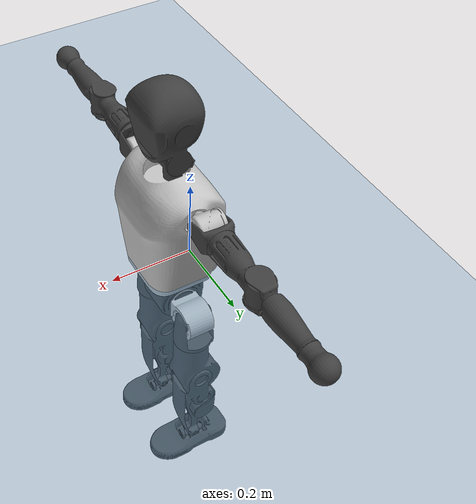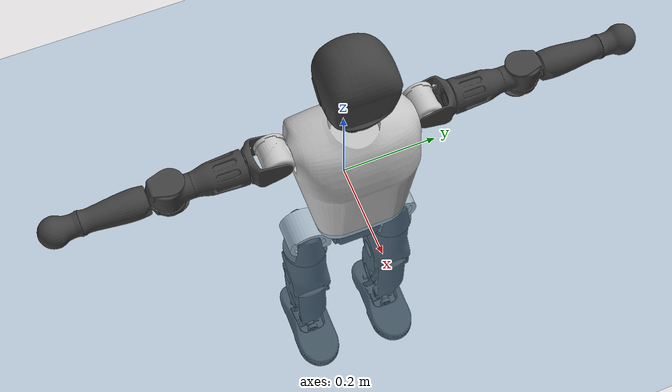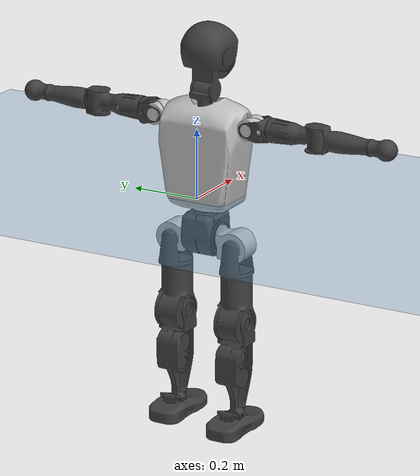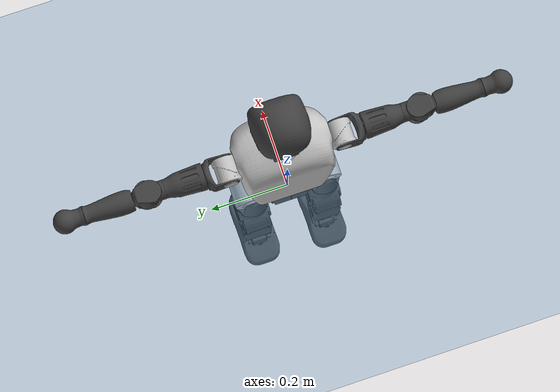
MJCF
<mujoco model="T1">
  <compiler angle="radian" assetdir="assets" balanceinertia="true" inertiafromgeom="false"/>

  <option timestep="0.005" density="1.2" viscosity="2e-05"/>

  <size nkey="1"/>

  <visual>
    <quality shadowsize="8192"/>
    <map shadowclip="0.5"/>
  </visual>

  <default>
    <default class="/">
      <joint armature="0.01" damping="0.01" frictionloss="0.1"/>
      <geom contype="0" conaffinity="0" group="1" solref="-1000 -80"/>
      <site size="0.01 0.005 0.005" group="5"/>
      <general forcelimited="true" biastype="affine" gainprm="25" biasprm="0 -25 -0.6"/>
      <default class="t1">
        <geom rgba="0.25 0.25 0.25 1"/>
        <default class="visual">
          <geom type="mesh" group="2"/>
        </default>
        <default class="collision">
          <geom group="3"/>
        </default>
        <default class="foot">
          <geom size="0.1115 0.05 0.015" type="box" condim="6" group="4" priority="1" solimp="0.015 1 0.015"/>
        </default>
        <default class="reward_collision_sphere">
          <geom group="5" rgba="1 0 0 1"/>
        </default>
      </default>
    </default>
  </default>

  <asset>
    <texture type="skybox" colorspace="auto" name="//unnamed_texture_0" builtin="gradient" rgb1="0.95 0.95 0.95" rgb2="0.95 0.95 0.95" width="100" height="600"/>
    <texture type="2d" colorspace="auto" name="texplane" builtin="checker" rgb1="0.345 0.575 0.748" rgb2="0.345 0.575 0.748" markrgb="1 1 1" width="512" height="512"/>
    <material name="MatPlane" class="/" texture="texplane" texuniform="true" texrepeat="2 2" specular="0.9"/>
    <mesh name="Trunk" class="/" file="Trunk.stl"/>
    <mesh name="H1" class="/" file="H1.stl"/>
    <mesh name="H2" class="/" file="H2.stl"/>
    <mesh name="AL1" class="/" file="AL1.stl"/>
    <mesh name="AL2" class="/" file="AL2.stl"/>
    <mesh name="AL3" class="/" file="AL3.stl"/>
    <mesh name="left_hand_link" class="/" file="left_hand_link.stl"/>
    <mesh name="AR1" class="/" file="AR1.stl"/>
    <mesh name="AR2" class="/" file="AR2.stl"/>
    <mesh name="AR3" class="/" file="AR3.stl"/>
    <mesh name="right_hand_link" class="/" file="right_hand_link.stl"/>
    <mesh name="Waist" class="/" file="Waist.stl"/>
    <mesh name="Hip_Pitch_Left" class="/" file="Hip_Pitch_Left.stl"/>
    <mesh name="Hip_Roll_Left" class="/" file="Hip_Roll_Left.stl"/>
    <mesh name="Hip_Yaw_Left" class="/" file="Hip_Yaw_Left.stl"/>
    <mesh name="Shank_Left" class="/" file="Shank_Left.stl"/>
    <mesh name="Ankle_Cross_Left" class="/" file="Ankle_Cross_Left.stl"/>
    <mesh name="left_foot_link" class="/" file="left_foot_link.stl"/>
    <mesh name="Hip_Pitch_Right" class="/" file="Hip_Pitch_Right.stl"/>
    <mesh name="Hip_Roll_Right" class="/" file="Hip_Roll_Right.stl"/>
    <mesh name="Hip_Yaw_Right" class="/" file="Hip_Yaw_Right.stl"/>
    <mesh name="Shank_Right" class="/" file="Shank_Right.stl"/>
    <mesh name="Ankle_Cross_Right" class="/" file="Ankle_Cross_Right.stl"/>
    <mesh name="right_foot_link" class="/" file="right_foot_link.stl"/>
  </asset>

  <worldbody>
    <geom name="floor" class="/" size="100 100 0.125" type="plane" group="0" material="MatPlane"/>
    <light name="toplight_shadow" class="/" pos="0 0 5" dir="0.0990148 0.0990148 -0.990148" type="directional" ambient="0.04 0.04 0.04" diffuse="0.55 0.55 0.55" specular="0.12 0.12 0.12"/>
    <light name="toplight_fill" class="/" pos="0 0 5" dir="0.0990148 0.0990148 -0.990148" type="directional" castshadow="false" ambient="0.04 0.04 0.04" diffuse="0.3 0.3 0.3" specular="0.08 0.08 0.08"/>
    <body name="trunk" childclass="t1" pos="-0.000480414 -0.00275903 0.0025356" quat="0.999999 0.00101797 0.0002858 -0.000886476">
      <inertial pos="0.0359007 -0.0013296 0.10478" quat="0.999961 -4.82121e-05 -0.0088644 2.876e-05" mass="7.62159" diaginertia="0.01313 0.0549719 0.0568254"/>
      <joint name="//unnamed_joint_0" type="free" armature="0" damping="0" frictionloss="0"/>
      <geom name="//unnamed_geom_1" class="visual" rgba="0.76 0.76 0.76 1" mesh="Trunk"/>
      <geom name="//unnamed_geom_2" class="collision" size="0.0650204 0.0866939 0.130041" pos="0.0404081 0 0.11899" type="box"/>
      <geom name="//unnamed_geom_3" class="reward_collision_sphere" size="0.099698" pos="0.0404081 0 0.0991585"/>
      <geom name="//unnamed_geom_4" class="reward_collision_sphere" size="0.0130041" pos="0.0404081 0.07954 0"/>
      <geom name="//unnamed_geom_5" class="reward_collision_sphere" size="0.0130041" pos="0.0404081 -0.07954 0"/>
      <geom name="//unnamed_geom_6" class="reward_collision_sphere" size="0.0130041" pos="0.0404081 0.100127 0.178485"/>
      <geom name="//unnamed_geom_7" class="reward_collision_sphere" size="0.0130041" pos="0.0404081 -0.100127 0.178485"/>
      <site name="imu" pos="0.0126809 0.00253407 -0.0031774" size="0.00866939"/>
      <camera name="track" pos="0 -1.87153 0" quat="0.707107 0.707107 0 0" mode="trackcom"/>
      <camera name="ego_camera" pos="0.0821632 0 0.416466" quat="-0.5 -0.5 0.5 0.5"/>
      <body name="H1" pos="0.04415 0.00251795 0.238209" quat="1 -2.94549e-05 1.62585e-05 -1.06567e-05">
        <inertial pos="-0.00380095 -0.000985351 0.0594821" quat="0.756823 -0.0174184 0.00209006 0.653385" mass="0.287168" diaginertia="3.23895e-05 0.000161572 0.000140529"/>
        <joint name="AAHead_yaw" pos="0 0 0" axis="0.0031149 0.00344248 0.999989" stiffness="0.00160787" range="-1.58616 1.51748" armature="0.0074494" damping="0.0157886" frictionloss="0.0967139"/>
        <geom name="//unnamed_geom_8" class="visual" mesh="H1"/>
        <body name="H2" pos="0.000276414 -0.000203106 0.0633054" quat="1 -3.59283e-05 -1.03424e-05 -1.74553e-05">
          <inertial pos="0.00393673 0.000329931 0.0980945" quat="0.988694 0.10407 -0.0726339 -0.0798556" mass="0.40064" diaginertia="0.000268076 0.00134294 0.0016494"/>
          <joint name="Head_pitch" pos="0 0 0" axis="0.000502472 -0.999988 0.0049339" range="-1.21365 0.337666" armature="0.00743081" damping="0.00592738" frictionloss="0.0893348"/>
          <geom name="//unnamed_geom_9" class="visual" mesh="H2"/>
          <geom name="//unnamed_geom_10" class="collision" size="0.0693551" pos="0.00673469 0 0.109074"/>
          <geom name="//unnamed_geom_11" class="reward_collision_sphere" size="0.0780245" pos="0.0134694 0 0.0991585"/>
        </body>
      </body>
      <body name="AL1" pos="0.0394024 0.0993904 0.217543" quat="1 9.69666e-06 0.000472481 6.09026e-05">
        <inertial pos="-0.0023747 0.0421091 -0.000723564" quat="0.498602 0.505161 -0.498734 0.497466" mass="0.347884" diaginertia="0.000189603 0.000938312 0.00028857"/>
        <joint name="Left_Shoulder_Pitch" pos="0 0 0" axis="0.000161883 0.999943 -0.010692" stiffness="0.000448838" range="-3.30744 1.23469" armature="0.0084411" damping="0.00856972" frictionloss="0.0913571"/>
        <geom name="//unnamed_geom_12" class="visual" rgba="0.76 0.76 0.76 1" mesh="AL1"/>
        <body name="AL2" pos="0.00122799 0.0453683 -0.00109526" quat="1 6.52248e-05 -0.000137201 -6.07189e-05">
          <inertial pos="0.00269587 0.0335407 -0.000316585" quat="0.487011 0.510497 -0.489986 0.511983" mass="0.105304" diaginertia="5.56553e-05 0.00024622 0.000172458"/>
          <joint name="Left_Shoulder_Roll" pos="0 0 0" axis="-0.999989 0.00226497 -0.00420542" range="-1.59101 1.77893" armature="0.00876006" damping="0.00569491" frictionloss="0.0903367"/>
          <geom name="//unnamed_geom_13" class="visual" mesh="AL2"/>
          <body name="AL3" pos="0.00345544 0.0573274 0.00204709" quat="0.999999 -0.0002685 0.000739551 -0.00114045">
            <inertial pos="-0.0028714 0.0796441 0.000212644" quat="0.703539 0.710648 -0.00354851 2.77754e-05" mass="0.684298" diaginertia="0.00181085 0.00886101 0.000592248"/>
            <joint name="Left_Elbow_Pitch" pos="0 0 0" axis="0.00122148 -0.999999 0.000104502" stiffness="0.00301224" range="-2.28148 2.26523" armature="0.0078669" damping="0.00995526" frictionloss="0.0912904"/>
            <geom name="//unnamed_geom_14" class="visual" mesh="AL3"/>
            <geom name="//unnamed_geom_15" class="collision" size="0.0260082 0.0650204" pos="0 0.0467882 0" quat="0.707105 0.707108 0 0" type="cylinder"/>
            <geom name="//unnamed_geom_16" class="reward_collision_sphere" size="0.0312098"/>
            <body name="left_hand_link" pos="-0.000832291 0.137692 -0.00163136" quat="0.999999 -0.000660598 6.82243e-05 -0.00117263">
              <inertial pos="-0.000705432 0.100486 0.00277005" quat="0.710277 0.703887 -0.00220885 0.00669749" mass="0.207445" diaginertia="0.00112836 0.00564409 0.000192136"/>
              <joint name="Left_Elbow_Yaw" pos="0 0 0" axis="-0.000774758 0.000861295 0.999999" stiffness="0.0106313" range="-2.42237 -0.00561149" armature="0.00899446" damping="0.00970997" frictionloss="0.0847399"/>
              <geom name="//unnamed_geom_17" class="visual" mesh="left_hand_link"/>
              <geom name="//unnamed_geom_18" class="collision" size="0.0260082 0.0758572" pos="0 0.121649 0" quat="0.707105 0.707108 0 0" type="cylinder"/>
              <geom name="//unnamed_geom_19" class="reward_collision_sphere" size="0.043347"/>
              <geom name="//unnamed_geom_20" class="reward_collision_sphere" size="0.0303429" pos="0 0.102934 0"/>
              <geom name="//unnamed_geom_21" class="reward_collision_sphere" size="0.0303429" pos="0 0.201189 0"/>
            </body>
          </body>
        </body>
      </body>
      <body name="AR1" pos="0.0398627 -0.101128 0.216106" quat="1 0.000447879 0.000239824 0.00019069">
        <inertial pos="-0.000340527 -0.0449964 0.00249516" quat="0.499769 0.496541 -0.505683 0.497959" mass="0.338782" diaginertia="0.000184656 0.000878293 0.000275027"/>
        <joint name="Right_Shoulder_Pitch" pos="0 0 0" axis="-0.0113511 -0.999927 -0.00402236" stiffness="0.00790855" range="-1.17293 3.31312" armature="0.00871192" damping="0.00673049" frictionloss="0.0980897"/>
        <geom name="//unnamed_geom_22" class="visual" rgba="0.76 0.76 0.76 1" mesh="AR1"/>
        <body name="AR2" pos="-0.000340059 -0.0445874 -0.000440792" quat="1 -0.000312435 0.000548612 0.000423774">
          <inertial pos="0.000602061 -0.034961 -0.00131948" quat="0.51353 0.481738 -0.51439 0.489509" mass="0.10581" diaginertia="5.72039e-05 0.00025445 0.00016912"/>
          <joint name="Right_Shoulder_Roll" pos="0 0 0" axis="-0.999874 -0.00506973 -0.0150468" range="-1.72851 1.56667" armature="0.00754888" damping="0.00659902" frictionloss="0.0911147"/>
          <geom name="//unnamed_geom_23" class="visual" mesh="AR2"/>
          <body name="AR3" pos="0.000371962 -0.0595039 0.00231385" quat="0.999999 9.24185e-05 0.00112976 0.000662703">
            <inertial pos="0.00209779 -0.0802047 0.00281215" quat="0.707929 0.706283 -0.000750901 0.000640939" mass="0.644729" diaginertia="0.0016719 0.00893314 0.000575706"/>
            <joint name="Right_Elbow_Pitch" pos="0 0 0" axis="0.000142863 1 -0.000236842" range="-2.25155 2.25639" armature="0.00847711" damping="0.00748152" frictionloss="0.0967409"/>
            <geom name="//unnamed_geom_24" class="visual" mesh="AR3"/>
            <geom name="//unnamed_geom_25" class="collision" size="0.0260082 0.0650204" pos="0 -0.0467882 0" quat="0.707105 0.707108 0 0" type="cylinder"/>
            <geom name="//unnamed_geom_26" class="reward_collision_sphere" size="0.0312098"/>
            <body name="right_hand_link" pos="-0.00271378 -0.138985 -0.00193963" quat="1 -6.7284e-05 -3.64373e-05 0.00014063">
              <inertial pos="-0.000398413 -0.102723 0.00179803" quat="0.706756 0.707452 0.00276387 -0.000166107" mass="0.212757" diaginertia="0.0011692 0.00602626 0.000210096"/>
              <joint name="Right_Elbow_Yaw" pos="0 0 0" axis="-0.00299448 0.010269 0.999943" range="0.0069853 2.43355" armature="0.00824956" damping="0.00456572" frictionloss="0.0940905"/>
              <geom name="//unnamed_geom_27" class="visual" mesh="right_hand_link"/>
              <geom name="//unnamed_geom_28" class="collision" size="0.0260082 0.0758572" pos="0 -0.121649 0" quat="0.707105 0.707108 0 0" type="cylinder"/>
              <geom name="//unnamed_geom_29" class="reward_collision_sphere" size="0.043347"/>
              <geom name="//unnamed_geom_30" class="reward_collision_sphere" size="0.0303429" pos="0 -0.102934 0"/>
              <geom name="//unnamed_geom_31" class="reward_collision_sphere" size="0.0303429" pos="0 -0.201189 0"/>
            </body>
          </body>
        </body>
      </body>
      <body name="Waist" pos="0.0405117 -0.00202632 -0.114282" quat="0.999999 -0.00120147 -0.000506496 0.00106561">
        <inertial pos="-0.00145258 0.00190036 0.00504519" quat="0.982326 0.00386039 -0.186662 0.0133321" mass="1.63274" diaginertia="0.000751556 0.00383763 0.00461637"/>
        <joint name="Waist" pos="0 0 0" axis="0.00968632 -0.00226821 0.999951" stiffness="0.00309544" range="-1.56884 1.55231" armature="0.00855972" damping="0.0170386" frictionloss="0.0877775"/>
        <geom name="//unnamed_geom_32" class="visual" mesh="Waist"/>
        <body name="Hip_Pitch_Left" pos="0.000588806 0.0961352 0.00156701" quat="1 -2.99098e-05 -5.27521e-05 -6.88236e-05">
          <inertial pos="0.00332757 -0.00721241 -0.0183391" quat="0.97645 0.214113 0.0263603 0.00267054" mass="0.676034" diaginertia="0.000247096 0.00110648 0.00123588"/>
          <joint name="Left_Hip_Pitch" pos="0 0 0" axis="0.00919401 0.999956 -0.00204461" stiffness="0.0137628" range="-1.78817 1.59293" armature="0.00940848" damping="0.0104794" frictionloss="0.087125"/>
          <geom name="//unnamed_geom_33" class="visual" rgba="0.76 0.76 0.76 1" mesh="Hip_Pitch_Left"/>
          <body name="Hip_Roll_Left" pos="-0.00157112 -0.00166203 -0.0216498" quat="1 0.000188111 0.00032604 0.00019764">
            <inertial pos="0.000513941 -0.00245139 -0.0543391" quat="0.707082 -0.00636461 -0.00620908 0.707076" mass="0.243284" diaginertia="0.000226052 0.0010216 0.000492792"/>
            <joint name="Left_Hip_Roll" pos="0 0 0" axis="-0.99999 0.00294984 -0.00331739" range="-1.54742 0.23147" armature="0.00824661" damping="0.00171922" frictionloss="0.0979997"/>
            <geom name="//unnamed_geom_34" class="visual" mesh="Hip_Roll_Left"/>
            <geom name="//unnamed_geom_35" class="reward_collision_sphere" size="0.0476817"/>
            <body name="Hip_Yaw_Left" pos="0.00187401 -0.00222252 -0.0795855" quat="1 -0.000778563 0.000543054 0.000133911">
              <inertial pos="-0.00546775 -0.000982423 -0.0911144" quat="0.696829 -0.0341792 -0.0318895 0.715712" mass="1.38986" diaginertia="0.0034498 0.0175651 0.00239815"/>
              <joint name="Left_Hip_Yaw" pos="0 0 0" axis="0.00271552 -0.00466148 -0.999985" range="-1.05389 1.02654" armature="0.00867007" damping="0.00764817" frictionloss="0.0867785"/>
              <geom name="//unnamed_geom_36" class="visual" mesh="Hip_Yaw_Left"/>
              <geom name="//unnamed_geom_37" class="collision" size="0.043347 0.0693551" type="cylinder"/>
              <body name="Shank_Left" pos="-0.008295 -0.000138823 -0.133278" quat="1 -0.000137648 5.91544e-05 -9.64476e-06">
                <inertial pos="-0.0066138 0.00115314 -0.123567" quat="0.997424 0.00103497 -0.0161184 0.0698891" mass="1.1061" diaginertia="0.00488528 0.0237107 0.00170154"/>
                <joint name="Left_Knee_Pitch" pos="0 0 0" axis="0.000147879 1 0.000333982" range="-0.00276117 2.29771" armature="0.00982027" damping="0" frictionloss="0.0866529"/>
                <geom name="//unnamed_geom_38" class="visual" mesh="Shank_Left"/>
                <geom name="//unnamed_geom_39" class="collision" size="0.043347 0.0650204" pos="0 0 -0.11899" type="cylinder"/>
                <geom name="//unnamed_geom_40" class="reward_collision_sphere" size="0.0563511"/>
                <body name="Ankle_Cross_Left" pos="0.00294968 -0.000116763 -0.27721" quat="1 -0.000155904 -0.000713958 -0.00010759">
                  <inertial pos="-0.00477033 -0.00123654 -0.00635587" quat="0.442929 0.550518 0.552433 0.442224" mass="0.0471125" diaginertia="3.93638e-06 1.84639e-05 1.09689e-05"/>
                  <joint name="Left_Ankle_Pitch" pos="0 0 0" axis="0.000985804 0.999999 -0.00100011" range="-0.869057 0.349361" armature="0.00967935" damping="0.0228563" frictionloss="0.0870215"/>
                  <geom name="//unnamed_geom_41" class="visual" mesh="Ankle_Cross_Left"/>
                  <body name="left_foot_link" pos="-0.000953376 -0.00288053 -0.0099421" quat="0.999999 0.000386285 0.000492994 -0.000950365">
                    <inertial pos="-0.00276724 -0.00145191 -0.00792111" quat="0.00569493 0.624507 -0.0114648 0.780914" mass="0.462982" diaginertia="0.000379032 0.00170467 0.00215427"/>
                    <joint name="Left_Ankle_Roll" pos="0 0 0" axis="-0.999922 -0.00991997 0.00754375" range="-0.44582 0.484384" armature="0.00861067" damping="0" frictionloss="0.0903346"/>
                    <geom name="//unnamed_geom_42" class="visual" mesh="left_foot_link"/>
                    <geom name="left_foot" class="foot" size="0.10816 0.0384809 0.0140684" pos="0.00673469 0 -0.0148738"/>
                    <geom name="//unnamed_geom_44" class="reward_collision_sphere" size="0.0450808" pos="0.00673469 0 -0.0148738"/>
                    <geom name="//unnamed_geom_45" class="reward_collision_sphere" size="0.0260082" pos="0.0639795 -0.0215226 -0.0148738"/>
                    <geom name="//unnamed_geom_46" class="reward_collision_sphere" size="0.0260082" pos="-0.0471428 -0.0215226 -0.0148738"/>
                    <site name="left_foot" class="foot" pos="0.00673469 0 -0.0148738" size="0.00866939"/>
                  </body>
                </body>
              </body>
            </body>
          </body>
        </body>
        <body name="Hip_Pitch_Right" pos="-0.000623134 -0.100804 -0.000295073" quat="1 -0.000141474 -0.000411835 0.000281621">
          <inertial pos="-0.002424 0.00429787 -0.0177255" quat="0.973647 -0.227401 0.016312 -0.00591505" mass="0.663644" diaginertia="0.000257461 0.00107899 0.00119344"/>
          <joint name="Right_Hip_Pitch" pos="0 0 0" axis="0.00270437 -0.99999 0.00355531" range="-1.5546 1.75418" armature="0.00851168" damping="0" frictionloss="0.0891588"/>
          <geom name="//unnamed_geom_47" class="visual" rgba="0.76 0.76 0.76 1" mesh="Hip_Pitch_Right"/>
          <body name="Hip_Roll_Right" pos="-0.00297603 -0.00061699 -0.0203426" quat="0.999999 -0.000979168 -0.000267978 -0.00040746">
            <inertial pos="-0.00129403 -0.000346576 -0.0507152" quat="0.714495 0.00279148 -0.00462923 0.69962" mass="0.256205" diaginertia="0.000252662 0.00110797 0.000497993"/>
            <joint name="Right_Hip_Roll" pos="0 0 0" axis="-0.999988 -0.00205427 -0.00441877" stiffness="0.00168796" range="-0.178631 1.5742" armature="0.00841546" damping="0.00615548" frictionloss="0.0968599"/>
            <geom name="//unnamed_geom_48" class="visual" mesh="Hip_Roll_Right"/>
            <geom name="//unnamed_geom_49" class="reward_collision_sphere" size="0.0476817"/>
            <body name="Hip_Yaw_Right" pos="-0.00147141 0.000584673 -0.084652" quat="1 -0.000308194 0.000117375 8.66616e-05">
              <inertial pos="-0.00387886 -2.71902e-05 -0.0866356" quat="0.714159 -0.0337412 -0.0346944 0.698309" mass="1.4251" diaginertia="0.00371331 0.0184754 0.00258329"/>
              <joint name="Right_Hip_Yaw" pos="0 0 0" axis="0.00327878 -0.00134534 -0.999994" range="-1.0151 0.993254" armature="0.00819347" damping="0.0205876" frictionloss="0.0865083"/>
              <geom name="//unnamed_geom_50" class="visual" mesh="Hip_Yaw_Right"/>
              <geom name="//unnamed_geom_51" class="collision" size="0.043347 0.0693551" type="cylinder"/>
              <body name="Shank_Right" pos="-0.011434 -0.000538417 -0.135391" quat="1 -7.18222e-06 7.18442e-05 -4.12068e-05">
                <inertial pos="-0.0034237 -0.00295787 -0.121397" quat="0.999077 0.0102252 -0.0300049 -0.0290017" mass="1.20254" diaginertia="0.00484027 0.0250227 0.00181361"/>
                <joint name="Right_Knee_Pitch" pos="0 0 0" axis="0.00817486 -0.999963 -0.00281045" range="-2.39531 0.00725447" armature="0.00900181" damping="0.00983913" frictionloss="0.0911648"/>
                <geom name="//unnamed_geom_52" class="visual" mesh="Shank_Right"/>
                <geom name="//unnamed_geom_53" class="collision" size="0.043347 0.0650204" pos="0 0 -0.11899" type="cylinder"/>
                <geom name="//unnamed_geom_54" class="reward_collision_sphere" size="0.0563511"/>
                <body name="Ankle_Cross_Right" pos="-0.00134554 -0.00126699 -0.280595" quat="1 -4.1723e-05 -0.000138141 6.83756e-05">
                  <inertial pos="-0.00285413 0.00194259 -0.00791922" quat="0.442626 0.551086 0.55128 0.443257" mass="0.0465189" diaginertia="4.16821e-06 1.79723e-05 1.12791e-05"/>
                  <joint name="Right_Ankle_Pitch" pos="0 0 0" axis="-0.00905651 -0.999915 -0.00940396" range="-0.309107 0.817602" armature="0.00864848" damping="0.0153447" frictionloss="0.0864169"/>
                  <geom name="//unnamed_geom_55" class="visual" mesh="Ankle_Cross_Right"/>
                  <body name="right_foot_link" pos="0.00136635 0.00169606 -0.0130819" quat="1 6.19922e-05 5.9246e-05 0.000127441">
                    <inertial pos="1.63443e-05 0.00263326 -0.0114821" quat="-0.00499015 0.613176 0.00853872 0.789884" mass="0.428122" diaginertia="0.000359318 0.00166077 0.00197124"/>
                    <joint name="Right_Ankle_Roll" pos="0 0 0" axis="-1 -0.000816712 -0.00011474" range="-0.492737 0.493255" armature="0.00772559" damping="0" frictionloss="0.0972414"/>
                    <geom name="//unnamed_geom_56" class="visual" mesh="right_foot_link"/>
                    <geom name="right_foot" class="foot" size="0.0986419 0.0387739 0.0141887" pos="0.00673469 0 -0.0148738"/>
                    <geom name="//unnamed_geom_58" class="reward_collision_sphere" size="0.0346776"/>
                    <geom name="//unnamed_geom_59" class="reward_collision_sphere" size="0.0260082" pos="0.00673469 0 -0.0148738"/>
                    <geom name="//unnamed_geom_60" class="reward_collision_sphere" size="0.0260082" pos="0.0639795 0.0215226 -0.0148738"/>
                    <geom name="//unnamed_geom_61" class="reward_collision_sphere" size="0.0260082" pos="-0.0471428 0.0215226 -0.0148738"/>
                    <site name="right_foot" class="foot" pos="0.00673469 0 -0.0148738" size="0.00866939"/>
                  </body>
                </body>
              </body>
            </body>
          </body>
        </body>
      </body>
    </body>
  </worldbody>

  <contact>
    <pair class="/" geom1="floor" geom2="left_foot" name="//unnamed_contact_0"/>
    <pair class="/" geom1="floor" geom2="right_foot" name="//unnamed_contact_1"/>
  </contact>

  <actuator>
    <general name="AAHead_yaw" class="/" joint="AAHead_yaw" forcerange="-6.06673 6.06673" gainprm="21.0975" biasprm="0 -21.0975 -0.530533"/>
    <general name="Head_pitch" class="/" joint="Head_pitch" forcerange="-6.17578 6.17578" gainprm="21.0975" biasprm="0 -21.0975 -0.530533"/>
    <general name="Left_Shoulder_Pitch" class="/" joint="Left_Shoulder_Pitch" forcerange="-14.1859 14.1859" gainprm="21.0975" biasprm="0 -21.0975 -0.530533"/>
    <general name="Left_Shoulder_Roll" class="/" joint="Left_Shoulder_Roll" forcerange="-13.925 13.925" gainprm="21.0975" biasprm="0 -21.0975 -0.530533"/>
    <general name="Left_Elbow_Pitch" class="/" joint="Left_Elbow_Pitch" forcerange="-16.9857 16.9857" gainprm="21.0975" biasprm="0 -21.0975 -0.530533"/>
    <general name="Left_Elbow_Yaw" class="/" joint="Left_Elbow_Yaw" forcerange="-15.4953 15.4953" gainprm="21.0975" biasprm="0 -21.0975 -0.530533"/>
    <general name="Right_Shoulder_Pitch" class="/" joint="Right_Shoulder_Pitch" forcerange="-16.216 16.216" gainprm="21.0975" biasprm="0 -21.0975 -0.530533"/>
    <general name="Right_Shoulder_Roll" class="/" joint="Right_Shoulder_Roll" forcerange="-17.0419 17.0419" gainprm="21.0975" biasprm="0 -21.0975 -0.530533"/>
    <general name="Right_Elbow_Pitch" class="/" joint="Right_Elbow_Pitch" forcerange="-15.0126 15.0126" gainprm="21.0975" biasprm="0 -21.0975 -0.530533"/>
    <general name="Right_Elbow_Yaw" class="/" joint="Right_Elbow_Yaw" forcerange="-15.8728 15.8728" gainprm="21.0975" biasprm="0 -21.0975 -0.530533"/>
    <general name="Waist" class="/" joint="Waist" forcerange="-23.4878 23.4878" gainprm="21.0975" biasprm="0 -21.0975 -0.530533"/>
    <general name="Left_Hip_Pitch" class="/" joint="Left_Hip_Pitch" forcerange="-37.5394 37.5394" gainprm="21.0975" biasprm="0 -21.0975 -0.530533"/>
    <general name="Left_Hip_Roll" class="/" joint="Left_Hip_Roll" forcerange="-26.3567 26.3567" gainprm="21.0975" biasprm="0 -21.0975 -0.530533"/>
    <general name="Left_Hip_Yaw" class="/" joint="Left_Hip_Yaw" forcerange="-24.3055 24.3055" gainprm="21.0975" biasprm="0 -21.0975 -0.530533"/>
    <general name="Left_Knee_Pitch" class="/" joint="Left_Knee_Pitch" forcerange="-50.5406 50.5406" gainprm="21.0975" biasprm="0 -21.0975 -0.530533"/>
    <general name="Left_Ankle_Pitch" class="/" joint="Left_Ankle_Pitch" forcerange="-17.2608 17.2608" gainprm="21.0975" biasprm="0 -21.0975 -0.530533"/>
    <general name="Left_Ankle_Roll" class="/" joint="Left_Ankle_Roll" forcerange="-12.9594 12.9594" gainprm="21.0975" biasprm="0 -21.0975 -0.530533"/>
    <general name="Right_Hip_Pitch" class="/" joint="Right_Hip_Pitch" forcerange="-43.0624 43.0624" gainprm="21.0975" biasprm="0 -21.0975 -0.530533"/>
    <general name="Right_Hip_Roll" class="/" joint="Right_Hip_Roll" forcerange="-28.3479 28.3479" gainprm="21.0975" biasprm="0 -21.0975 -0.530533"/>
    <general name="Right_Hip_Yaw" class="/" joint="Right_Hip_Yaw" forcerange="-25.8419 25.8419" gainprm="21.0975" biasprm="0 -21.0975 -0.530533"/>
    <general name="Right_Knee_Pitch" class="/" joint="Right_Knee_Pitch" forcerange="-54.7772 54.7772" gainprm="21.0975" biasprm="0 -21.0975 -0.530533"/>
    <general name="Right_Ankle_Pitch" class="/" joint="Right_Ankle_Pitch" forcerange="-15.723 15.723" gainprm="21.0975" biasprm="0 -21.0975 -0.530533"/>
    <general name="Right_Ankle_Roll" class="/" joint="Right_Ankle_Roll" forcerange="-14.3173 14.3173" gainprm="21.0975" biasprm="0 -21.0975 -0.530533"/>
  </actuator>

  <sensor>
    <gyro site="imu" name="imu_angular_velocity"/>
    <velocimeter site="imu" name="imu_linear_velocity"/>
    <framelinvel objtype="site" objname="left_foot" name="left_foot_global_linear_velocity"/>
    <framelinvel objtype="site" objname="right_foot" name="right_foot_global_linear_velocity"/>
  </sensor>

  <keyframe>
    <key name="home" qpos="0 0 0.6385 1 0 0 0 0 0 0 1.4 0 -0.4 0 -1.4 0 0.4 0 -0.4 0 0 0.8 -0.4 0 0.4 0 0 -0.8 0.4 0"/>
  </keyframe>
</mujoco>
